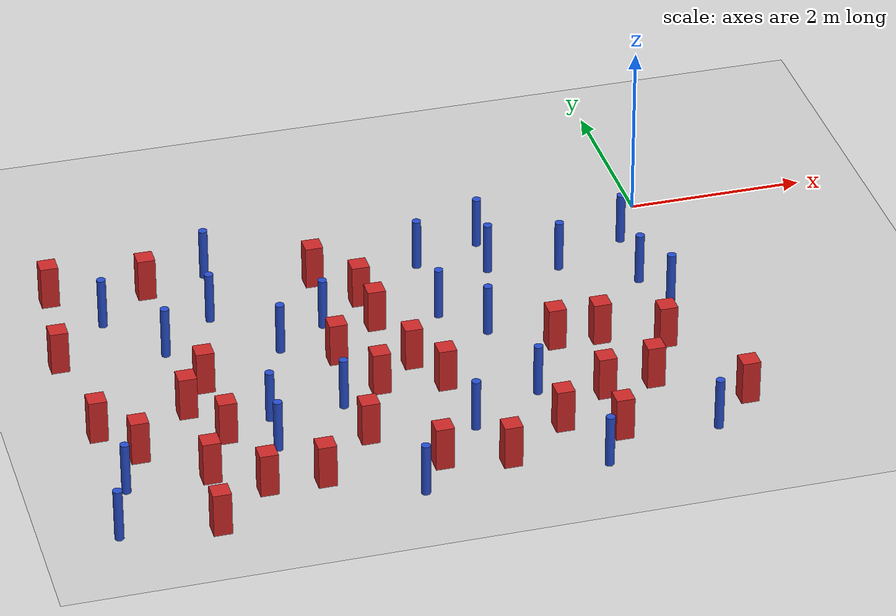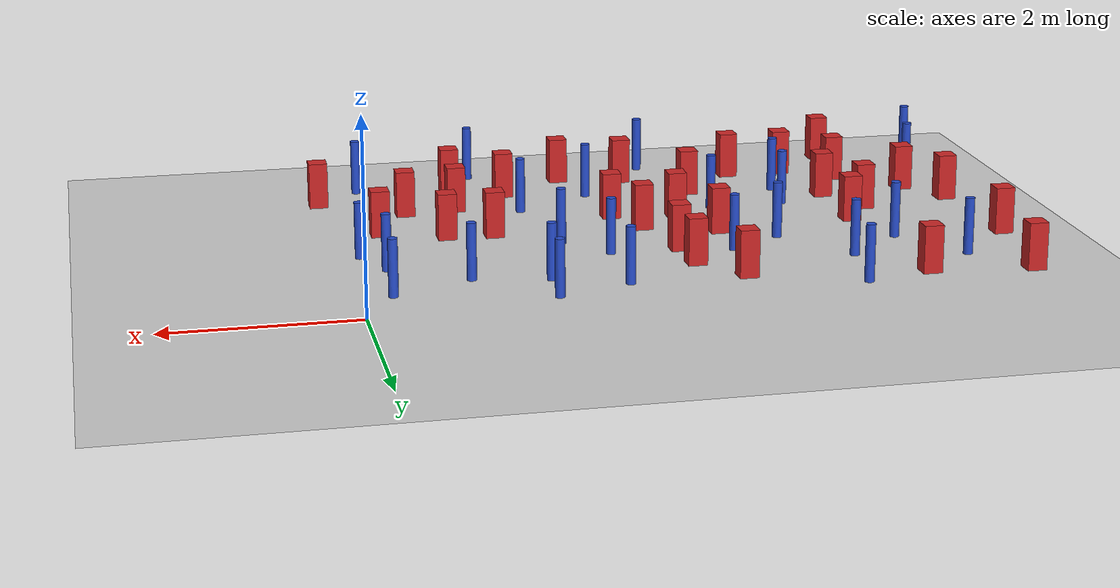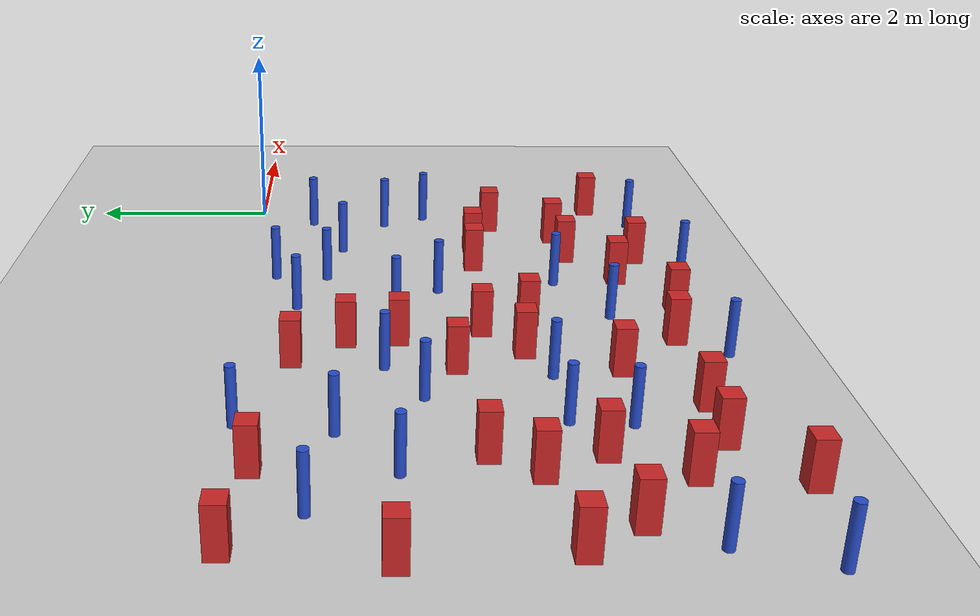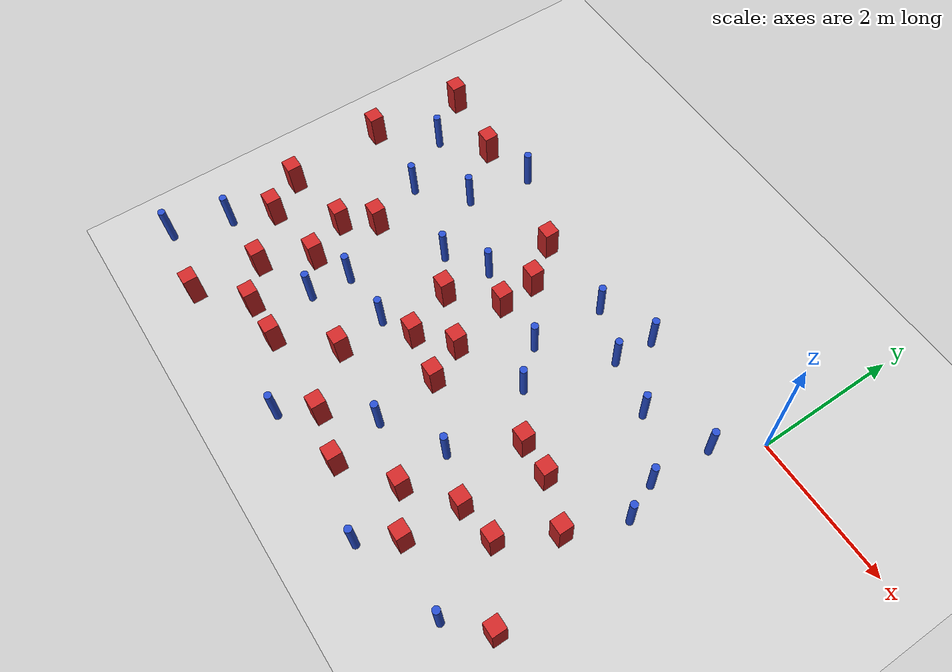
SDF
<sdf version="1.6">
 <world name="default">
  <model name="ground_plane">
   <static>1</static>
   <link name="link">
    <collision name="collision">
     <geometry><plane><normal>0 0 1</normal><size>100 100</size></plane></geometry>
     <surface><friction><ode><mu>100</mu><mu2>50</mu2></ode></friction></surface>
    </collision>
    <visual name="visual">
     <cast_shadows>0</cast_shadows>
     <geometry><plane><normal>0 0 1</normal><size>100 100</size></plane></geometry>
     <material>
      <ambient>1.0 1.0 1.0 1.0</ambient>
      <diffuse>0.8 0.8 0.8 1.0</diffuse>
      <specular>0.01 0.01 0.01 1.000000</specular>
     </material>
    </visual>
   </link>
  </model>
  <model name="pole_obstacle3">
   <static>true</static>
   <pose>-4.98828440317 -3.05685536045 7.38925637345e-09 -8.47170692798e-08 1.24976764937e-08 -1.74513093023e-07</pose>
   <link name="link">
    <pose>0 0 0.3 0 -0 0</pose>
    <inertial>
     <mass>1</mass>
     <inertia><ixx>0.145833</ixx><ixy>0</ixy><ixz>0</ixz><iyy>0.145833</iyy><iyz>0</iyz><izz>0.125</izz></inertia>
    </inertial>
    <collision name="collision">
     <geometry><cylinder><radius>0.05</radius><length>.6</length></cylinder></geometry>
    </collision>
    <visual name="visual">
     <geometry><cylinder><radius>0.05</radius><length>.6</length></cylinder></geometry>
     <material>
      <script><name>Gazebo/Blue</name><uri>file://media/materials/scripts/gazebo.material</uri></script>
     </material>
    </visual>
   </link>
  </model>
  <model name="pole_obstacle4">
   <static>true</static>
   <pose>-4.57300198142 -1.81196447435 7.38925637345e-09 -8.471706928e-08 1.24976765134e-08 -1.74513093015e-07</pose>
   <link name="link">
    <pose>0 0 0.3 0 -0 0</pose>
    <inertial>
     <mass>1</mass>
     <inertia><ixx>0.145833</ixx><ixy>0</ixy><ixz>0</ixz><iyy>0.145833</iyy><iyz>0</iyz><izz>0.125</izz></inertia>
    </inertial>
    <collision name="collision">
     <geometry><cylinder><radius>0.05</radius><length>.6</length></cylinder></geometry>
    </collision>
    <visual name="visual">
     <geometry><cylinder><radius>0.05</radius><length>.6</length></cylinder></geometry>
     <material>
      <script><name>Gazebo/Blue</name><uri>file://media/materials/scripts/gazebo.material</uri></script>
     </material>
    </visual>
   </link>
  </model>
  <model name="square_post_obstacle10">
   <static>true</static>
   <pose>-5.74730264443 -0.327476296227 1.91545236811e-07 -7.35059704564e-06 1.12565212e-07 2.39332434364e-05</pose>
   <link name="link">
    <pose>0 0 0.25 0 -0 0</pose>
    <inertial>
     <mass>100</mass>
     <inertia>
      <ixx>0.166667</ixx>
      <ixy>0</ixy>
      <ixz>0</ixz>
      <iyy>0.166667</iyy>
      <iyz>0</iyz>
      <izz>0.166667</izz>
     </inertia>
    </inertial>
    <collision name="collision"><geometry><box><size>.2 .2 .5</size></box></geometry></collision>
    <visual name="visual">
     <geometry><box><size>.2 .2 .5</size></box></geometry>
     <material>
      <script><name>Gazebo/Red</name><uri>file://media/materials/scripts/gazebo.material</uri></script>
     </material>
    </visual>
   </link>
  </model>
  <model name="pole_obstacle11">
   <static>true</static>
   <pose>-0.171977113743 -1.9775579437 7.38925637345e-09 -8.471706928e-08 1.24976765063e-08 -1.74513093017e-07</pose>
   <link name="link">
    <pose>0 0 0.3 0 -0 0</pose>
    <inertial>
     <mass>1</mass>
     <inertia><ixx>0.145833</ixx><ixy>0</ixy><ixz>0</ixz><iyy>0.145833</iyy><iyz>0</iyz><izz>0.125</izz></inertia>
    </inertial>
    <collision name="collision">
     <geometry><cylinder><radius>0.05</radius><length>.6</length></cylinder></geometry>
    </collision>
    <visual name="visual">
     <geometry><cylinder><radius>0.05</radius><length>.6</length></cylinder></geometry>
     <material>
      <script><name>Gazebo/Blue</name><uri>file://media/materials/scripts/gazebo.material</uri></script>
     </material>
    </visual>
   </link>
  </model>
  <model name="square_post_obstacle22">
   <static>true</static>
   <pose>-6.81083238746 -0.198538770943 1.91545236811e-07 -7.35059704564e-06 1.12565212e-07 2.39332434364e-05</pose>
   <link name="link">
    <pose>0 0 0.25 0 -0 0</pose>
    <inertial>
     <mass>100</mass>
     <inertia>
      <ixx>0.166667</ixx>
      <ixy>0</ixy>
      <ixz>0</ixz>
      <iyy>0.166667</iyy>
      <iyz>0</iyz>
      <izz>0.166667</izz>
     </inertia>
    </inertial>
    <collision name="collision"><geometry><box><size>.2 .2 .5</size></box></geometry></collision>
    <visual name="visual">
     <geometry><box><size>.2 .2 .5</size></box></geometry>
     <material>
      <script><name>Gazebo/Red</name><uri>file://media/materials/scripts/gazebo.material</uri></script>
     </material>
    </visual>
   </link>
  </model>
  <model name="square_post_obstacle23">
   <static>true</static>
   <pose>-3.45728172434 -1.60527301583 1.91545236811e-07 -7.35059704564e-06 1.12565212e-07 2.39332434364e-05</pose>
   <link name="link">
    <pose>0 0 0.25 0 -0 0</pose>
    <inertial>
     <mass>100</mass>
     <inertia>
      <ixx>0.166667</ixx>
      <ixy>0</ixy>
      <ixz>0</ixz>
      <iyy>0.166667</iyy>
      <iyz>0</iyz>
      <izz>0.166667</izz>
     </inertia>
    </inertial>
    <collision name="collision"><geometry><box><size>.2 .2 .5</size></box></geometry></collision>
    <visual name="visual">
     <geometry><box><size>.2 .2 .5</size></box></geometry>
     <material>
      <script><name>Gazebo/Red</name><uri>file://media/materials/scripts/gazebo.material</uri></script>
     </material>
    </visual>
   </link>
  </model>
  <model name="square_post_obstacle24">
   <static>true</static>
   <pose>-3.01696144579 -2.9321759393 1.91545236811e-07 -7.35059704564e-06 1.12565212e-07 2.39332434364e-05</pose>
   <link name="link">
    <pose>0 0 0.25 0 -0 0</pose>
    <inertial>
     <mass>100</mass>
     <inertia>
      <ixx>0.166667</ixx>
      <ixy>0</ixy>
      <ixz>0</ixz>
      <iyy>0.166667</iyy>
      <iyz>0</iyz>
      <izz>0.166667</izz>
     </inertia>
    </inertial>
    <collision name="collision"><geometry><box><size>.2 .2 .5</size></box></geometry></collision>
    <visual name="visual">
     <geometry><box><size>.2 .2 .5</size></box></geometry>
     <material>
      <script><name>Gazebo/Red</name><uri>file://media/materials/scripts/gazebo.material</uri></script>
     </material>
    </visual>
   </link>
  </model>
  <model name="square_post_obstacle28">
   <static>true</static>
   <pose>-6.96407308411 -1.49995333478 1.91545236811e-07 -7.35059704564e-06 1.12565212e-07 2.39332434364e-05</pose>
   <link name="link">
    <pose>0 0 0.25 0 -0 0</pose>
    <inertial>
     <mass>100</mass>
     <inertia>
      <ixx>0.166667</ixx>
      <ixy>0</ixy>
      <ixz>0</ixz>
      <iyy>0.166667</iyy>
      <iyz>0</iyz>
      <izz>0.166667</izz>
     </inertia>
    </inertial>
    <collision name="collision"><geometry><box><size>.2 .2 .5</size></box></geometry></collision>
    <visual name="visual">
     <geometry><box><size>.2 .2 .5</size></box></geometry>
     <material>
      <script><name>Gazebo/Red</name><uri>file://media/materials/scripts/gazebo.material</uri></script>
     </material>
    </visual>
   </link>
  </model>
  <model name="square_post_obstacle31">
   <static>true</static>
   <pose>-4.06890721013 -3.69258017221 1.91545236811e-07 -7.35059704564e-06 1.12565212e-07 2.39332434364e-05</pose>
   <link name="link">
    <pose>0 0 0.25 0 -0 0</pose>
    <inertial>
     <mass>100</mass>
     <inertia>
      <ixx>0.166667</ixx>
      <ixy>0</ixy>
      <ixz>0</ixz>
      <iyy>0.166667</iyy>
      <iyz>0</iyz>
      <izz>0.166667</izz>
     </inertia>
    </inertial>
    <collision name="collision"><geometry><box><size>.2 .2 .5</size></box></geometry></collision>
    <visual name="visual">
     <geometry><box><size>.2 .2 .5</size></box></geometry>
     <material>
      <script><name>Gazebo/Red</name><uri>file://media/materials/scripts/gazebo.material</uri></script>
     </material>
    </visual>
   </link>
  </model>
  <model name="pole_obstacle26">
   <static>true</static>
   <pose>-1.9584652011 -0.851368311238 7.38925637345e-09 -8.47170692798e-08 1.24976764937e-08 -1.74513093025e-07</pose>
   <link name="link">
    <pose>0 0 0.3 0 -0 0</pose>
    <inertial>
     <mass>1</mass>
     <inertia><ixx>0.145833</ixx><ixy>0</ixy><ixz>0</ixz><iyy>0.145833</iyy><iyz>0</iyz><izz>0.125</izz></inertia>
    </inertial>
    <collision name="collision">
     <geometry><cylinder><radius>0.05</radius><length>.6</length></cylinder></geometry>
    </collision>
    <visual name="visual">
     <geometry><cylinder><radius>0.05</radius><length>.6</length></cylinder></geometry>
     <material>
      <script><name>Gazebo/Blue</name><uri>file://media/materials/scripts/gazebo.material</uri></script>
     </material>
    </visual>
   </link>
  </model>
  <model name="pole_obstacle27">
   <static>true</static>
   <pose>-1.74761450512 -4.80458505382 7.38925637345e-09 -8.47170692799e-08 1.24976765033e-08 -1.74513093018e-07</pose>
   <link name="link">
    <pose>0 0 0.3 0 -0 0</pose>
    <inertial>
     <mass>1</mass>
     <inertia><ixx>0.145833</ixx><ixy>0</ixy><ixz>0</ixz><iyy>0.145833</iyy><iyz>0</iyz><izz>0.125</izz></inertia>
    </inertial>
    <collision name="collision">
     <geometry><cylinder><radius>0.05</radius><length>.6</length></cylinder></geometry>
    </collision>
    <visual name="visual">
     <geometry><cylinder><radius>0.05</radius><length>.6</length></cylinder></geometry>
     <material>
      <script><name>Gazebo/Blue</name><uri>file://media/materials/scripts/gazebo.material</uri></script>
     </material>
    </visual>
   </link>
  </model>
  <model name="square_post_obstacle34">
   <static>true</static>
   <pose>-3.25838353723 -2.4360656461 1.91545236811e-07 -7.35059704564e-06 1.12565212e-07 2.39332434364e-05</pose>
   <link name="link">
    <pose>0 0 0.25 0 -0 0</pose>
    <inertial>
     <mass>100</mass>
     <inertia>
      <ixx>0.166667</ixx>
      <ixy>0</ixy>
      <ixz>0</ixz>
      <iyy>0.166667</iyy>
      <iyz>0</iyz>
      <izz>0.166667</izz>
     </inertia>
    </inertial>
    <collision name="collision"><geometry><box><size>.2 .2 .5</size></box></geometry></collision>
    <visual name="visual">
     <geometry><box><size>.2 .2 .5</size></box></geometry>
     <material>
      <script><name>Gazebo/Red</name><uri>file://media/materials/scripts/gazebo.material</uri></script>
     </material>
    </visual>
   </link>
  </model>
  <model name="pole_obstacle33">
   <static>true</static>
   <pose>-3.74356728804 -4.79807553551 7.38925637345e-09 -8.47170692794e-08 1.24976764468e-08 -1.7451309304e-07</pose>
   <link name="link">
    <pose>0 0 0.3 0 -0 0</pose>
    <inertial>
     <mass>1</mass>
     <inertia><ixx>0.145833</ixx><ixy>0</ixy><ixz>0</ixz><iyy>0.145833</iyy><iyz>0</iyz><izz>0.125</izz></inertia>
    </inertial>
    <collision name="collision">
     <geometry><cylinder><radius>0.05</radius><length>.6</length></cylinder></geometry>
    </collision>
    <visual name="visual">
     <geometry><cylinder><radius>0.05</radius><length>.6</length></cylinder></geometry>
     <material>
      <script><name>Gazebo/Blue</name><uri>file://media/materials/scripts/gazebo.material</uri></script>
     </material>
    </visual>
   </link>
  </model>
  <model name="square_post_obstacle37">
   <static>true</static>
   <pose>-5.5180360071 -3.28660912892 1.91545236811e-07 -7.35059704564e-06 1.12565212e-07 2.39332434364e-05</pose>
   <link name="link">
    <pose>0 0 0.25 0 -0 0</pose>
    <inertial>
     <mass>100</mass>
     <inertia>
      <ixx>0.166667</ixx>
      <ixy>0</ixy>
      <ixz>0</ixz>
      <iyy>0.166667</iyy>
      <iyz>0</iyz>
      <izz>0.166667</izz>
     </inertia>
    </inertial>
    <collision name="collision"><geometry><box><size>.2 .2 .5</size></box></geometry></collision>
    <visual name="visual">
     <geometry><box><size>.2 .2 .5</size></box></geometry>
     <material>
      <script><name>Gazebo/Red</name><uri>file://media/materials/scripts/gazebo.material</uri></script>
     </material>
    </visual>
   </link>
  </model>
  <model name="pole_obstacle42">
   <static>true</static>
   <pose>-4.0075675882 -1.45762143122 7.38925637345e-09 -8.471706928e-08 1.2497676513e-08 -1.74513093015e-07</pose>
   <link name="link">
    <pose>0 0 0.3 0 -0 0</pose>
    <inertial>
     <mass>1</mass>
     <inertia><ixx>0.145833</ixx><ixy>0</ixy><ixz>0</ixz><iyy>0.145833</iyy><iyz>0</iyz><izz>0.125</izz></inertia>
    </inertial>
    <collision name="collision">
     <geometry><cylinder><radius>0.05</radius><length>.6</length></cylinder></geometry>
    </collision>
    <visual name="visual">
     <geometry><cylinder><radius>0.05</radius><length>.6</length></cylinder></geometry>
     <material>
      <script><name>Gazebo/Blue</name><uri>file://media/materials/scripts/gazebo.material</uri></script>
     </material>
    </visual>
   </link>
  </model>
  <model name="square_post_obstacle42">
   <static>true</static>
   <pose>-2.73671078378 -4.50340242945 1.91545236811e-07 -7.35059704564e-06 1.12565212e-07 2.39332434364e-05</pose>
   <link name="link">
    <pose>0 0 0.25 0 -0 0</pose>
    <inertial>
     <mass>100</mass>
     <inertia>
      <ixx>0.166667</ixx>
      <ixy>0</ixy>
      <ixz>0</ixz>
      <iyy>0.166667</iyy>
      <iyz>0</iyz>
      <izz>0.166667</izz>
     </inertia>
    </inertial>
    <collision name="collision"><geometry><box><size>.2 .2 .5</size></box></geometry></collision>
    <visual name="visual">
     <geometry><box><size>.2 .2 .5</size></box></geometry>
     <material>
      <script><name>Gazebo/Red</name><uri>file://media/materials/scripts/gazebo.material</uri></script>
     </material>
    </visual>
   </link>
  </model>
  <model name="square_post_obstacle43">
   <static>true</static>
   <pose>-2.02106269035 -4.01286235766 1.91545236811e-07 -7.35059704564e-06 1.12565212e-07 2.39332434364e-05</pose>
   <link name="link">
    <pose>0 0 0.25 0 -0 0</pose>
    <inertial>
     <mass>100</mass>
     <inertia>
      <ixx>0.166667</ixx>
      <ixy>0</ixy>
      <ixz>0</ixz>
      <iyy>0.166667</iyy>
      <iyz>0</iyz>
      <izz>0.166667</izz>
     </inertia>
    </inertial>
    <collision name="collision"><geometry><box><size>.2 .2 .5</size></box></geometry></collision>
    <visual name="visual">
     <geometry><box><size>.2 .2 .5</size></box></geometry>
     <material>
      <script><name>Gazebo/Red</name><uri>file://media/materials/scripts/gazebo.material</uri></script>
     </material>
    </visual>
   </link>
  </model>
  <model name="square_post_obstacle49">
   <static>true</static>
   <pose>-1.45679060145 -4.32177870324 1.91545236811e-07 -7.35059704564e-06 1.12565212e-07 2.39332434364e-05</pose>
   <link name="link">
    <pose>0 0 0.25 0 -0 0</pose>
    <inertial>
     <mass>100</mass>
     <inertia>
      <ixx>0.166667</ixx>
      <ixy>0</ixy>
      <ixz>0</ixz>
      <iyy>0.166667</iyy>
      <iyz>0</iyz>
      <izz>0.166667</izz>
     </inertia>
    </inertial>
    <collision name="collision"><geometry><box><size>.2 .2 .5</size></box></geometry></collision>
    <visual name="visual">
     <geometry><box><size>.2 .2 .5</size></box></geometry>
     <material>
      <script><name>Gazebo/Red</name><uri>file://media/materials/scripts/gazebo.material</uri></script>
     </material>
    </visual>
   </link>
  </model>
  <model name="pole_obstacle55">
   <static>true</static>
   <pose>-2.69922632657 -0.558277185187 7.38925637345e-09 -8.471706928e-08 1.24976765177e-08 -1.74513093012e-07</pose>
   <link name="link">
    <pose>0 0 0.3 0 -0 0</pose>
    <inertial>
     <mass>1</mass>
     <inertia><ixx>0.145833</ixx><ixy>0</ixy><ixz>0</ixz><iyy>0.145833</iyy><iyz>0</iyz><izz>0.125</izz></inertia>
    </inertial>
    <collision name="collision">
     <geometry><cylinder><radius>0.05</radius><length>.6</length></cylinder></geometry>
    </collision>
    <visual name="visual">
     <geometry><cylinder><radius>0.05</radius><length>.6</length></cylinder></geometry>
     <material>
      <script><name>Gazebo/Blue</name><uri>file://media/materials/scripts/gazebo.material</uri></script>
     </material>
    </visual>
   </link>
  </model>
  <model name="pole_obstacle64">
   <static>true</static>
   <pose>-6.98999125479 -4.74301480197 7.38925637345e-09 -8.47170692796e-08 1.24976764786e-08 -1.74513093032e-07</pose>
   <link name="link">
    <pose>0 0 0.3 0 -0 0</pose>
    <inertial>
     <mass>1</mass>
     <inertia><ixx>0.145833</ixx><ixy>0</ixy><ixz>0</ixz><iyy>0.145833</iyy><iyz>0</iyz><izz>0.125</izz></inertia>
    </inertial>
    <collision name="collision">
     <geometry><cylinder><radius>0.05</radius><length>.6</length></cylinder></geometry>
    </collision>
    <visual name="visual">
     <geometry><cylinder><radius>0.05</radius><length>.6</length></cylinder></geometry>
     <material>
      <script><name>Gazebo/Blue</name><uri>file://media/materials/scripts/gazebo.material</uri></script>
     </material>
    </visual>
   </link>
  </model>
  <model name="pole_obstacle65">
   <static>true</static>
   <pose>-5.17575388716 -1.01310706074 7.38925637345e-09 -8.471706928e-08 1.24976765101e-08 -1.74513093015e-07</pose>
   <link name="link">
    <pose>0 0 0.3 0 -0 0</pose>
    <inertial>
     <mass>1</mass>
     <inertia><ixx>0.145833</ixx><ixy>0</ixy><ixz>0</ixz><iyy>0.145833</iyy><iyz>0</iyz><izz>0.125</izz></inertia>
    </inertial>
    <collision name="collision">
     <geometry><cylinder><radius>0.05</radius><length>.6</length></cylinder></geometry>
    </collision>
    <visual name="visual">
     <geometry><cylinder><radius>0.05</radius><length>.6</length></cylinder></geometry>
     <material>
      <script><name>Gazebo/Blue</name><uri>file://media/materials/scripts/gazebo.material</uri></script>
     </material>
    </visual>
   </link>
  </model>
  <model name="square_post_obstacle69">
   <static>true</static>
   <pose>-6.83186437281 -2.89696729668 1.91545236811e-07 -7.35059704564e-06 1.12565212e-07 2.39332434364e-05</pose>
   <link name="link">
    <pose>0 0 0.25 0 -0 0</pose>
    <inertial>
     <mass>100</mass>
     <inertia>
      <ixx>0.166667</ixx>
      <ixy>0</ixy>
      <ixz>0</ixz>
      <iyy>0.166667</iyy>
      <iyz>0</iyz>
      <izz>0.166667</izz>
     </inertia>
    </inertial>
    <collision name="collision"><geometry><box><size>.2 .2 .5</size></box></geometry></collision>
    <visual name="visual">
     <geometry><box><size>.2 .2 .5</size></box></geometry>
     <material>
      <script><name>Gazebo/Red</name><uri>file://media/materials/scripts/gazebo.material</uri></script>
     </material>
    </visual>
   </link>
  </model>
  <model name="square_post_obstacle72">
   <static>true</static>
   <pose>0.0436798303822 -4.01592238428 1.91545236811e-07 -7.35059704564e-06 1.12565212e-07 2.39332434364e-05</pose>
   <link name="link">
    <pose>0 0 0.25 0 -0 0</pose>
    <inertial>
     <mass>100</mass>
     <inertia>
      <ixx>0.166667</ixx>
      <ixy>0</ixy>
      <ixz>0</ixz>
      <iyy>0.166667</iyy>
      <iyz>0</iyz>
      <izz>0.166667</izz>
     </inertia>
    </inertial>
    <collision name="collision"><geometry><box><size>.2 .2 .5</size></box></geometry></collision>
    <visual name="visual">
     <geometry><box><size>.2 .2 .5</size></box></geometry>
     <material>
      <script><name>Gazebo/Red</name><uri>file://media/materials/scripts/gazebo.material</uri></script>
     </material>
    </visual>
   </link>
  </model>
  <model name="square_post_obstacle75">
   <static>true</static>
   <pose>-1.41010822327 -3.53915145302 1.91545236811e-07 -7.35059704564e-06 1.12565212e-07 2.39332434364e-05</pose>
   <link name="link">
    <pose>0 0 0.25 0 -0 0</pose>
    <inertial>
     <mass>100</mass>
     <inertia>
      <ixx>0.166667</ixx>
      <ixy>0</ixy>
      <ixz>0</ixz>
      <iyy>0.166667</iyy>
      <iyz>0</iyz>
      <izz>0.166667</izz>
     </inertia>
    </inertial>
    <collision name="collision"><geometry><box><size>.2 .2 .5</size></box></geometry></collision>
    <visual name="visual">
     <geometry><box><size>.2 .2 .5</size></box></geometry>
     <material>
      <script><name>Gazebo/Red</name><uri>file://media/materials/scripts/gazebo.material</uri></script>
     </material>
    </visual>
   </link>
  </model>
  <model name="square_post_obstacle77">
   <static>true</static>
   <pose>-3.50247431384 -1.08403801484 1.91545236811e-07 -7.35059704564e-06 1.12565212e-07 2.39332434364e-05</pose>
   <link name="link">
    <pose>0 0 0.25 0 -0 0</pose>
    <inertial>
     <mass>100</mass>
     <inertia>
      <ixx>0.166667</ixx>
      <ixy>0</ixy>
      <ixz>0</ixz>
      <iyy>0.166667</iyy>
      <iyz>0</iyz>
      <izz>0.166667</izz>
     </inertia>
    </inertial>
    <collision name="collision"><geometry><box><size>.2 .2 .5</size></box></geometry></collision>
    <visual name="visual">
     <geometry><box><size>.2 .2 .5</size></box></geometry>
     <material>
      <script><name>Gazebo/Red</name><uri>file://media/materials/scripts/gazebo.material</uri></script>
     </material>
    </visual>
   </link>
  </model>
  <model name="pole_obstacle80">
   <static>true</static>
   <pose>-6.74772738415 -3.9565932873 7.38925637345e-09 -8.47170692799e-08 1.24976764984e-08 -1.7451309302e-07</pose>
   <link name="link">
    <pose>0 0 0.3 0 -0 0</pose>
    <inertial>
     <mass>1</mass>
     <inertia><ixx>0.145833</ixx><ixy>0</ixy><ixz>0</ixz><iyy>0.145833</iyy><iyz>0</iyz><izz>0.125</izz></inertia>
    </inertial>
    <collision name="collision">
     <geometry><cylinder><radius>0.05</radius><length>.6</length></cylinder></geometry>
    </collision>
    <visual name="visual">
     <geometry><cylinder><radius>0.05</radius><length>.6</length></cylinder></geometry>
     <material>
      <script><name>Gazebo/Blue</name><uri>file://media/materials/scripts/gazebo.material</uri></script>
     </material>
    </visual>
   </link>
  </model>
  <model name="pole_obstacle86">
   <static>true</static>
   <pose>-0.387416812336 -1.50135176035 7.38925637345e-09 -8.47170692798e-08 1.24976765025e-08 -1.74513093018e-07</pose>
   <link name="link">
    <pose>0 0 0.3 0 -0 0</pose>
    <inertial>
     <mass>1</mass>
     <inertia><ixx>0.145833</ixx><ixy>0</ixy><ixz>0</ixz><iyy>0.145833</iyy><iyz>0</iyz><izz>0.125</izz></inertia>
    </inertial>
    <collision name="collision">
     <geometry><cylinder><radius>0.05</radius><length>.6</length></cylinder></geometry>
    </collision>
    <visual name="visual">
     <geometry><cylinder><radius>0.05</radius><length>.6</length></cylinder></geometry>
     <material>
      <script><name>Gazebo/Blue</name><uri>file://media/materials/scripts/gazebo.material</uri></script>
     </material>
    </visual>
   </link>
  </model>
  <model name="pole_obstacle87">
   <static>true</static>
   <pose>-2.72856770123 -1.59355495274 7.38925637345e-09 -8.471706928e-08 1.24976765152e-08 -1.74513093012e-07</pose>
   <link name="link">
    <pose>0 0 0.3 0 -0 0</pose>
    <inertial>
     <mass>1</mass>
     <inertia><ixx>0.145833</ixx><ixy>0</ixy><ixz>0</ixz><iyy>0.145833</iyy><iyz>0</iyz><izz>0.125</izz></inertia>
    </inertial>
    <collision name="collision">
     <geometry><cylinder><radius>0.05</radius><length>.6</length></cylinder></geometry>
    </collision>
    <visual name="visual">
     <geometry><cylinder><radius>0.05</radius><length>.6</length></cylinder></geometry>
     <material>
      <script><name>Gazebo/Blue</name><uri>file://media/materials/scripts/gazebo.material</uri></script>
     </material>
    </visual>
   </link>
  </model>
  <model name="square_post_obstacle81">
   <static>true</static>
   <pose>-5.53601199116 -2.29777273636 1.91545236811e-07 -7.35059704564e-06 1.12565212e-07 2.39332434364e-05</pose>
   <link name="link">
    <pose>0 0 0.25 0 -0 0</pose>
    <inertial>
     <mass>100</mass>
     <inertia>
      <ixx>0.166667</ixx>
      <ixy>0</ixy>
      <ixz>0</ixz>
      <iyy>0.166667</iyy>
      <iyz>0</iyz>
      <izz>0.166667</izz>
     </inertia>
    </inertial>
    <collision name="collision"><geometry><box><size>.2 .2 .5</size></box></geometry></collision>
    <visual name="visual">
     <geometry><box><size>.2 .2 .5</size></box></geometry>
     <material>
      <script><name>Gazebo/Red</name><uri>file://media/materials/scripts/gazebo.material</uri></script>
     </material>
    </visual>
   </link>
  </model>
  <model name="square_post_obstacle98">
   <static>true</static>
   <pose>-0.47927641785 -2.76039685436 1.91545236811e-07 -7.35059704564e-06 1.12565212e-07 2.39332434364e-05</pose>
   <link name="link">
    <pose>0 0 0.25 0 -0 0</pose>
    <inertial>
     <mass>100</mass>
     <inertia>
      <ixx>0.166667</ixx>
      <ixy>0</ixy>
      <ixz>0</ixz>
      <iyy>0.166667</iyy>
      <iyz>0</iyz>
      <izz>0.166667</izz>
     </inertia>
    </inertial>
    <collision name="collision"><geometry><box><size>.2 .2 .5</size></box></geometry></collision>
    <visual name="visual">
     <geometry><box><size>.2 .2 .5</size></box></geometry>
     <material>
      <script><name>Gazebo/Red</name><uri>file://media/materials/scripts/gazebo.material</uri></script>
     </material>
    </visual>
   </link>
  </model>
  <model name="square_post_obstacle100">
   <static>true</static>
   <pose>-3.90047879984 -0.566928263476 1.91545236811e-07 -7.35059704564e-06 1.12565212e-07 2.39332434364e-05</pose>
   <link name="link">
    <pose>0 0 0.25 0 -0 0</pose>
    <inertial>
     <mass>100</mass>
     <inertia>
      <ixx>0.166667</ixx>
      <ixy>0</ixy>
      <ixz>0</ixz>
      <iyy>0.166667</iyy>
      <iyz>0</iyz>
      <izz>0.166667</izz>
     </inertia>
    </inertial>
    <collision name="collision"><geometry><box><size>.2 .2 .5</size></box></geometry></collision>
    <visual name="visual">
     <geometry><box><size>.2 .2 .5</size></box></geometry>
     <material>
      <script><name>Gazebo/Red</name><uri>file://media/materials/scripts/gazebo.material</uri></script>
     </material>
    </visual>
   </link>
  </model>
  <model name="pole_obstacle120">
   <static>true</static>
   <pose>-0.339439771824 -0.638728217716 7.38925637345e-09 -8.47170692799e-08 1.24976765033e-08 -1.74513093019e-07</pose>
   <link name="link">
    <pose>0 0 0.3 0 -0 0</pose>
    <inertial>
     <mass>1</mass>
     <inertia><ixx>0.145833</ixx><ixy>0</ixy><ixz>0</ixz><iyy>0.145833</iyy><iyz>0</iyz><izz>0.125</izz></inertia>
    </inertial>
    <collision name="collision">
     <geometry><cylinder><radius>0.05</radius><length>.6</length></cylinder></geometry>
    </collision>
    <visual name="visual">
     <geometry><cylinder><radius>0.05</radius><length>.6</length></cylinder></geometry>
     <material>
      <script><name>Gazebo/Blue</name><uri>file://media/materials/scripts/gazebo.material</uri></script>
     </material>
    </visual>
   </link>
  </model>
  <model name="pole_obstacle128">
   <static>true</static>
   <pose>-5.7924240408 -1.5604612746 7.38925637345e-09 -8.471706928e-08 1.24976765134e-08 -1.74513093015e-07</pose>
   <link name="link">
    <pose>0 0 0.3 0 -0 0</pose>
    <inertial>
     <mass>1</mass>
     <inertia><ixx>0.145833</ixx><ixy>0</ixy><ixz>0</ixz><iyy>0.145833</iyy><iyz>0</iyz><izz>0.125</izz></inertia>
    </inertial>
    <collision name="collision">
     <geometry><cylinder><radius>0.05</radius><length>.6</length></cylinder></geometry>
    </collision>
    <visual name="visual">
     <geometry><cylinder><radius>0.05</radius><length>.6</length></cylinder></geometry>
     <material>
      <script><name>Gazebo/Blue</name><uri>file://media/materials/scripts/gazebo.material</uri></script>
     </material>
    </visual>
   </link>
  </model>
  <model name="pole_obstacle130">
   <static>true</static>
   <pose>-0.426989969129 -4.458673057 7.38925637345e-09 -8.471706928e-08 1.24976765079e-08 -1.74513093015e-07</pose>
   <link name="link">
    <pose>0 0 0.3 0 -0 0</pose>
    <inertial>
     <mass>1</mass>
     <inertia><ixx>0.145833</ixx><ixy>0</ixy><ixz>0</ixz><iyy>0.145833</iyy><iyz>0</iyz><izz>0.125</izz></inertia>
    </inertial>
    <collision name="collision">
     <geometry><cylinder><radius>0.05</radius><length>.6</length></cylinder></geometry>
    </collision>
    <visual name="visual">
     <geometry><cylinder><radius>0.05</radius><length>.6</length></cylinder></geometry>
     <material>
      <script><name>Gazebo/Blue</name><uri>file://media/materials/scripts/gazebo.material</uri></script>
     </material>
    </visual>
   </link>
  </model>
  <model name="pole_obstacle131">
   <static>true</static>
   <pose>-2.92073411544 -3.79672448677 7.38925637345e-09 -8.47170692798e-08 1.24976764939e-08 -1.74513093025e-07</pose>
   <link name="link">
    <pose>0 0 0.3 0 -0 0</pose>
    <inertial>
     <mass>1</mass>
     <inertia><ixx>0.145833</ixx><ixy>0</ixy><ixz>0</ixz><iyy>0.145833</iyy><iyz>0</iyz><izz>0.125</izz></inertia>
    </inertial>
    <collision name="collision">
     <geometry><cylinder><radius>0.05</radius><length>.6</length></cylinder></geometry>
    </collision>
    <visual name="visual">
     <geometry><cylinder><radius>0.05</radius><length>.6</length></cylinder></geometry>
     <material>
      <script><name>Gazebo/Blue</name><uri>file://media/materials/scripts/gazebo.material</uri></script>
     </material>
    </visual>
   </link>
  </model>
  <model name="square_post_obstacle117">
   <static>true</static>
   <pose>-6.48860470978 -3.39452039414 1.91545236811e-07 -7.35059704564e-06 1.12565212e-07 2.39332434364e-05</pose>
   <link name="link">
    <pose>0 0 0.25 0 -0 0</pose>
    <inertial>
     <mass>100</mass>
     <inertia>
      <ixx>0.166667</ixx>
      <ixy>0</ixy>
      <ixz>0</ixz>
      <iyy>0.166667</iyy>
      <iyz>0</iyz>
      <izz>0.166667</izz>
     </inertia>
    </inertial>
    <collision name="collision"><geometry><box><size>.2 .2 .5</size></box></geometry></collision>
    <visual name="visual">
     <geometry><box><size>.2 .2 .5</size></box></geometry>
     <material>
      <script><name>Gazebo/Red</name><uri>file://media/materials/scripts/gazebo.material</uri></script>
     </material>
    </visual>
   </link>
  </model>
  <model name="pole_obstacle137">
   <static>true</static>
   <pose>-6.33376306225 -0.811015069452 7.38925637345e-09 -8.47170692799e-08 1.24976765038e-08 -1.74513093018e-07</pose>
   <link name="link">
    <pose>0 0 0.3 0 -0 0</pose>
    <inertial>
     <mass>1</mass>
     <inertia><ixx>0.145833</ixx><ixy>0</ixy><ixz>0</ixz><iyy>0.145833</iyy><iyz>0</iyz><izz>0.125</izz></inertia>
    </inertial>
    <collision name="collision">
     <geometry><cylinder><radius>0.05</radius><length>.6</length></cylinder></geometry>
    </collision>
    <visual name="visual">
     <geometry><cylinder><radius>0.05</radius><length>.6</length></cylinder></geometry>
     <material>
      <script><name>Gazebo/Blue</name><uri>file://media/materials/scripts/gazebo.material</uri></script>
     </material>
    </visual>
   </link>
  </model>
  <model name="pole_obstacle138">
   <static>true</static>
   <pose>-5.03846401409 -0.124188693478 7.38925637345e-09 -8.47170692799e-08 1.24976765077e-08 -1.74513093018e-07</pose>
   <link name="link">
    <pose>0 0 0.3 0 -0 0</pose>
    <inertial>
     <mass>1</mass>
     <inertia><ixx>0.145833</ixx><ixy>0</ixy><ixz>0</ixz><iyy>0.145833</iyy><iyz>0</iyz><izz>0.125</izz></inertia>
    </inertial>
    <collision name="collision">
     <geometry><cylinder><radius>0.05</radius><length>.6</length></cylinder></geometry>
    </collision>
    <visual name="visual">
     <geometry><cylinder><radius>0.05</radius><length>.6</length></cylinder></geometry>
     <material>
      <script><name>Gazebo/Blue</name><uri>file://media/materials/scripts/gazebo.material</uri></script>
     </material>
    </visual>
   </link>
  </model>
  <model name="square_post_obstacle120">
   <static>true</static>
   <pose>-3.43537294014 -4.34275895938 1.91545236811e-07 -7.35059704564e-06 1.12565212e-07 2.39332434364e-05</pose>
   <link name="link">
    <pose>0 0 0.25 0 -0 0</pose>
    <inertial>
     <mass>100</mass>
     <inertia>
      <ixx>0.166667</ixx>
      <ixy>0</ixy>
      <ixz>0</ixz>
      <iyy>0.166667</iyy>
      <iyz>0</iyz>
      <izz>0.166667</izz>
     </inertia>
    </inertial>
    <collision name="collision"><geometry><box><size>.2 .2 .5</size></box></geometry></collision>
    <visual name="visual">
     <geometry><box><size>.2 .2 .5</size></box></geometry>
     <material>
      <script><name>Gazebo/Red</name><uri>file://media/materials/scripts/gazebo.material</uri></script>
     </material>
    </visual>
   </link>
  </model>
  <model name="square_post_obstacle124">
   <static>true</static>
   <pose>-5.82241088117 -2.72464987032 1.91545236811e-07 -7.35059704564e-06 1.12565212e-07 2.39332434364e-05</pose>
   <link name="link">
    <pose>0 0 0.25 0 -0 0</pose>
    <inertial>
     <mass>100</mass>
     <inertia>
      <ixx>0.166667</ixx>
      <ixy>0</ixy>
      <ixz>0</ixz>
      <iyy>0.166667</iyy>
      <iyz>0</iyz>
      <izz>0.166667</izz>
     </inertia>
    </inertial>
    <collision name="collision"><geometry><box><size>.2 .2 .5</size></box></geometry></collision>
    <visual name="visual">
     <geometry><box><size>.2 .2 .5</size></box></geometry>
     <material>
      <script><name>Gazebo/Red</name><uri>file://media/materials/scripts/gazebo.material</uri></script>
     </material>
    </visual>
   </link>
  </model>
  <model name="square_post_obstacle141">
   <static>true</static>
   <pose>-5.84640701823 -3.95661108067 1.91545236811e-07 -7.35059704564e-06 1.12565212e-07 2.39332434364e-05</pose>
   <link name="link">
    <pose>0 0 0.25 0 -0 0</pose>
    <inertial>
     <mass>100</mass>
     <inertia>
      <ixx>0.166667</ixx>
      <ixy>0</ixy>
      <ixz>0</ixz>
      <iyy>0.166667</iyy>
      <iyz>0</iyz>
      <izz>0.166667</izz>
     </inertia>
    </inertial>
    <collision name="collision"><geometry><box><size>.2 .2 .5</size></box></geometry></collision>
    <visual name="visual">
     <geometry><box><size>.2 .2 .5</size></box></geometry>
     <material>
      <script><name>Gazebo/Red</name><uri>file://media/materials/scripts/gazebo.material</uri></script>
     </material>
    </visual>
   </link>
  </model>
  <model name="pole_obstacle154">
   <static>true</static>
   <pose>-4.17206135303 -3.03315423975 7.38925637345e-09 -8.47170692798e-08 1.24976764937e-08 -1.74513093023e-07</pose>
   <link name="link">
    <pose>0 0 0.3 0 -0 0</pose>
    <inertial>
     <mass>1</mass>
     <inertia><ixx>0.145833</ixx><ixy>0</ixy><ixz>0</ixz><iyy>0.145833</iyy><iyz>0</iyz><izz>0.125</izz></inertia>
    </inertial>
    <collision name="collision">
     <geometry><cylinder><radius>0.05</radius><length>.6</length></cylinder></geometry>
    </collision>
    <visual name="visual">
     <geometry><cylinder><radius>0.05</radius><length>.6</length></cylinder></geometry>
     <material>
      <script><name>Gazebo/Blue</name><uri>file://media/materials/scripts/gazebo.material</uri></script>
     </material>
    </visual>
   </link>
  </model>
  <model name="square_post_obstacle144">
   <static>true</static>
   <pose>-0.843254802791 -3.47057904896 1.91545236811e-07 -7.35059704564e-06 1.12565212e-07 2.39332434364e-05</pose>
   <link name="link">
    <pose>0 0 0.25 0 -0 0</pose>
    <inertial>
     <mass>100</mass>
     <inertia>
      <ixx>0.166667</ixx>
      <ixy>0</ixy>
      <ixz>0</ixz>
      <iyy>0.166667</iyy>
      <iyz>0</iyz>
      <izz>0.166667</izz>
     </inertia>
    </inertial>
    <collision name="collision"><geometry><box><size>.2 .2 .5</size></box></geometry></collision>
    <visual name="visual">
     <geometry><box><size>.2 .2 .5</size></box></geometry>
     <material>
      <script><name>Gazebo/Red</name><uri>file://media/materials/scripts/gazebo.material</uri></script>
     </material>
    </visual>
   </link>
  </model>
  <model name="pole_obstacle165">
   <static>true</static>
   <pose>-2.29667306336 -2.05489628864 7.38925637345e-09 -8.47170692798e-08 1.24976764939e-08 -1.74513093025e-07</pose>
   <link name="link">
    <pose>0 0 0.3 0 -0 0</pose>
    <inertial>
     <mass>1</mass>
     <inertia><ixx>0.145833</ixx><ixy>0</ixy><ixz>0</ixz><iyy>0.145833</iyy><iyz>0</iyz><izz>0.125</izz></inertia>
    </inertial>
    <collision name="collision">
     <geometry><cylinder><radius>0.05</radius><length>.6</length></cylinder></geometry>
    </collision>
    <visual name="visual">
     <geometry><cylinder><radius>0.05</radius><length>.6</length></cylinder></geometry>
     <material>
      <script><name>Gazebo/Blue</name><uri>file://media/materials/scripts/gazebo.material</uri></script>
     </material>
    </visual>
   </link>
  </model>
  <model name="pole_obstacle169">
   <static>true</static>
   <pose>-2.09833125669 -3.32750683693 7.38925637345e-09 -8.47170692798e-08 1.24976764939e-08 -1.74513093025e-07</pose>
   <link name="link">
    <pose>0 0 0.3 0 -0 0</pose>
    <inertial>
     <mass>1</mass>
     <inertia><ixx>0.145833</ixx><ixy>0</ixy><ixz>0</ixz><iyy>0.145833</iyy><iyz>0</iyz><izz>0.125</izz></inertia>
    </inertial>
    <collision name="collision">
     <geometry><cylinder><radius>0.05</radius><length>.6</length></cylinder></geometry>
    </collision>
    <visual name="visual">
     <geometry><cylinder><radius>0.05</radius><length>.6</length></cylinder></geometry>
     <material>
      <script><name>Gazebo/Blue</name><uri>file://media/materials/scripts/gazebo.material</uri></script>
     </material>
    </visual>
   </link>
  </model>
  <model name="pole_obstacle174">
   <static>true</static>
   <pose>-1.92921059342 -0.291991318063 7.38925637345e-09 -8.47170692798e-08 1.24976764989e-08 -1.74513093022e-07</pose>
   <link name="link">
    <pose>0 0 0.3 0 -0 0</pose>
    <inertial>
     <mass>1</mass>
     <inertia><ixx>0.145833</ixx><ixy>0</ixy><ixz>0</ixz><iyy>0.145833</iyy><iyz>0</iyz><izz>0.125</izz></inertia>
    </inertial>
    <collision name="collision">
     <geometry><cylinder><radius>0.05</radius><length>.6</length></cylinder></geometry>
    </collision>
    <visual name="visual">
     <geometry><cylinder><radius>0.05</radius><length>.6</length></cylinder></geometry>
     <material>
      <script><name>Gazebo/Blue</name><uri>file://media/materials/scripts/gazebo.material</uri></script>
     </material>
    </visual>
   </link>
  </model>
  <model name="square_post_obstacle164">
   <static>true</static>
   <pose>-1.65726058578 -2.48197350203 1.91545236811e-07 -7.35059704564e-06 1.12565212e-07 2.39332434364e-05</pose>
   <link name="link">
    <pose>0 0 0.25 0 -0 0</pose>
    <inertial>
     <mass>100</mass>
     <inertia>
      <ixx>0.166667</ixx>
      <ixy>0</ixy>
      <ixz>0</ixz>
      <iyy>0.166667</iyy>
      <iyz>0</iyz>
      <izz>0.166667</izz>
     </inertia>
    </inertial>
    <collision name="collision"><geometry><box><size>.2 .2 .5</size></box></geometry></collision>
    <visual name="visual">
     <geometry><box><size>.2 .2 .5</size></box></geometry>
     <material>
      <script><name>Gazebo/Red</name><uri>file://media/materials/scripts/gazebo.material</uri></script>
     </material>
    </visual>
   </link>
  </model>
  <model name="pole_obstacle184">
   <static>true</static>
   <pose>-1.17587343409 -1.01143011254 7.38925637345e-09 -8.47170692799e-08 1.24976765073e-08 -1.74513093016e-07</pose>
   <link name="link">
    <pose>0 0 0.3 0 -0 0</pose>
    <inertial>
     <mass>1</mass>
     <inertia><ixx>0.145833</ixx><ixy>0</ixy><ixz>0</ixz><iyy>0.145833</iyy><iyz>0</iyz><izz>0.125</izz></inertia>
    </inertial>
    <collision name="collision">
     <geometry><cylinder><radius>0.05</radius><length>.6</length></cylinder></geometry>
    </collision>
    <visual name="visual">
     <geometry><cylinder><radius>0.05</radius><length>.6</length></cylinder></geometry>
     <material>
      <script><name>Gazebo/Blue</name><uri>file://media/materials/scripts/gazebo.material</uri></script>
     </material>
    </visual>
   </link>
  </model>
  <model name="square_post_obstacle185">
   <static>true</static>
   <pose>-5.94870903544 -4.87417427764 1.91545236811e-07 -7.35059704564e-06 1.12565212e-07 2.39332434364e-05</pose>
   <link name="link">
    <pose>0 0 0.25 0 -0 0</pose>
    <inertial>
     <mass>100</mass>
     <inertia>
      <ixx>0.166667</ixx>
      <ixy>0</ixy>
      <ixz>0</ixz>
      <iyy>0.166667</iyy>
      <iyz>0</iyz>
      <izz>0.166667</izz>
     </inertia>
    </inertial>
    <collision name="collision"><geometry><box><size>.2 .2 .5</size></box></geometry></collision>
    <visual name="visual">
     <geometry><box><size>.2 .2 .5</size></box></geometry>
     <material>
      <script><name>Gazebo/Red</name><uri>file://media/materials/scripts/gazebo.material</uri></script>
     </material>
    </visual>
   </link>
  </model>
  <model name="square_post_obstacle196">
   <static>true</static>
   <pose>-4.02427458421 -2.14051449008 1.91545236811e-07 -7.35059704564e-06 1.12565212e-07 2.39332434364e-05</pose>
   <link name="link">
    <pose>0 0 0.25 0 -0 0</pose>
    <inertial>
     <mass>100</mass>
     <inertia>
      <ixx>0.166667</ixx>
      <ixy>0</ixy>
      <ixz>0</ixz>
      <iyy>0.166667</iyy>
      <iyz>0</iyz>
      <izz>0.166667</izz>
     </inertia>
    </inertial>
    <collision name="collision"><geometry><box><size>.2 .2 .5</size></box></geometry></collision>
    <visual name="visual">
     <geometry><box><size>.2 .2 .5</size></box></geometry>
     <material>
      <script><name>Gazebo/Red</name><uri>file://media/materials/scripts/gazebo.material</uri></script>
     </material>
    </visual>
   </link>
  </model>
  <model name="square_post_obstacle200">
   <static>true</static>
   <pose>-4.70046137968 -4.33412650472 1.91545236811e-07 -7.35059704564e-06 1.12565212e-07 2.39332434364e-05</pose>
   <link name="link">
    <pose>0 0 0.25 0 -0 0</pose>
    <inertial>
     <mass>100</mass>
     <inertia>
      <ixx>0.166667</ixx>
      <ixy>0</ixy>
      <ixz>0</ixz>
      <iyy>0.166667</iyy>
      <iyz>0</iyz>
      <izz>0.166667</izz>
     </inertia>
    </inertial>
    <collision name="collision"><geometry><box><size>.2 .2 .5</size></box></geometry></collision>
    <visual name="visual">
     <geometry><box><size>.2 .2 .5</size></box></geometry>
     <material>
      <script><name>Gazebo/Red</name><uri>file://media/materials/scripts/gazebo.material</uri></script>
     </material>
    </visual>
   </link>
  </model>
  <model name="pole_obstacle197">
   <static>true</static>
   <pose>-5.03574471425 -3.61809697435 7.38925637345e-09 -8.47170692798e-08 1.24976764937e-08 -1.74513093023e-07</pose>
   <link name="link">
    <pose>0 0 0.3 0 -0 0</pose>
    <inertial>
     <mass>1</mass>
     <inertia><ixx>0.145833</ixx><ixy>0</ixy><ixz>0</ixz><iyy>0.145833</iyy><iyz>0</iyz><izz>0.125</izz></inertia>
    </inertial>
    <collision name="collision">
     <geometry><cylinder><radius>0.05</radius><length>.6</length></cylinder></geometry>
    </collision>
    <visual name="visual">
     <geometry><cylinder><radius>0.05</radius><length>.6</length></cylinder></geometry>
     <material>
      <script><name>Gazebo/Blue</name><uri>file://media/materials/scripts/gazebo.material</uri></script>
     </material>
    </visual>
   </link>
  </model>
  <model name="square_post_obstacle203">
   <static>true</static>
   <pose>-5.32099163257 -4.3217601406 1.91545236811e-07 -7.35059704564e-06 1.12565212e-07 2.39332434364e-05</pose>
   <link name="link">
    <pose>0 0 0.25 0 -0 0</pose>
    <inertial>
     <mass>100</mass>
     <inertia>
      <ixx>0.166667</ixx>
      <ixy>0</ixy>
      <ixz>0</ixz>
      <iyy>0.166667</iyy>
      <iyz>0</iyz>
      <izz>0.166667</izz>
     </inertia>
    </inertial>
    <collision name="collision"><geometry><box><size>.2 .2 .5</size></box></geometry></collision>
    <visual name="visual">
     <geometry><box><size>.2 .2 .5</size></box></geometry>
     <material>
      <script><name>Gazebo/Red</name><uri>file://media/materials/scripts/gazebo.material</uri></script>
     </material>
    </visual>
   </link>
  </model>
  <model name="square_post_obstacle206">
   <static>true</static>
   <pose>-1.15441026478 -2.5074498526 1.91545236811e-07 -7.35059704564e-06 1.12565212e-07 2.39332434364e-05</pose>
   <link name="link">
    <pose>0 0 0.25 0 -0 0</pose>
    <inertial>
     <mass>100</mass>
     <inertia>
      <ixx>0.166667</ixx>
      <ixy>0</ixy>
      <ixz>0</ixz>
      <iyy>0.166667</iyy>
      <iyz>0</iyz>
      <izz>0.166667</izz>
     </inertia>
    </inertial>
    <collision name="collision"><geometry><box><size>.2 .2 .5</size></box></geometry></collision>
    <visual name="visual">
     <geometry><box><size>.2 .2 .5</size></box></geometry>
     <material>
      <script><name>Gazebo/Red</name><uri>file://media/materials/scripts/gazebo.material</uri></script>
     </material>
    </visual>
   </link>
  </model>
  <model name="square_post_obstacle216">
   <static>true</static>
   <pose>-3.71746301573 -2.81466884776 1.91545236811e-07 -7.35059704564e-06 1.12565212e-07 2.39332434364e-05</pose>
   <link name="link">
    <pose>0 0 0.25 0 -0 0</pose>
    <inertial>
     <mass>100</mass>
     <inertia>
      <ixx>0.166667</ixx>
      <ixy>0</ixy>
      <ixz>0</ixz>
      <iyy>0.166667</iyy>
      <iyz>0</iyz>
      <izz>0.166667</izz>
     </inertia>
    </inertial>
    <collision name="collision"><geometry><box><size>.2 .2 .5</size></box></geometry></collision>
    <visual name="visual">
     <geometry><box><size>.2 .2 .5</size></box></geometry>
     <material>
      <script><name>Gazebo/Red</name><uri>file://media/materials/scripts/gazebo.material</uri></script>
     </material>
    </visual>
   </link>
  </model>
 </world>
</sdf>
